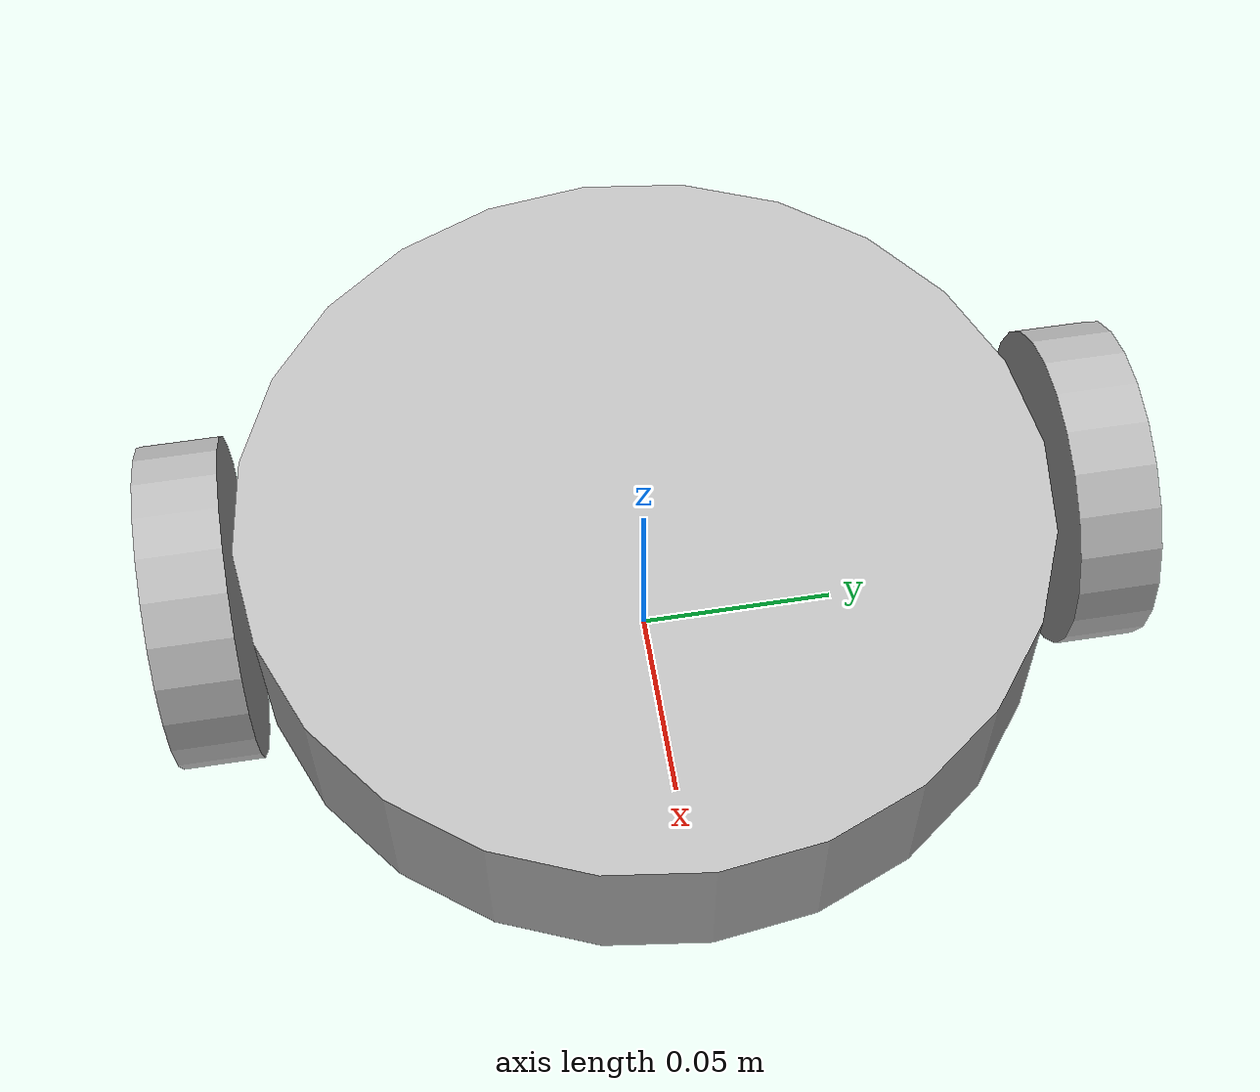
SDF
<?xml version='1.0'?>
<sdf version='1.4'>
    <model name="robot">
        <static>false</static>
        <link name="chassis">
            <pose>0 0 0.04 0 0 0</pose>
            <collision name="collision>">
                <geometry>
                    <cylinder>
                        <radius>0.1</radius>
                        <length>0.04</length>
                    </cylinder>
                </geometry>
            </collision>
            <visual name="visual">
                <geometry>
                    <cylinder>
                        <radius>0.1</radius>
                        <length>0.04</length>
                    </cylinder>
                </geometry>
            </visual>
            <collision name='caster_front_collision'>
                <pose>0.07 0 -0.02 0 0 0</pose>
                    <geometry>
                        <sphere>
                            <radius>.02</radius>
                        </sphere>
                    </geometry>
                <surface>
                    <friction>
                        <ode>
                            <mu>0</mu>
                            <mu2>0</mu2>
                            <slip1>1.0</slip1>
                            <slip2>1.0</slip2>
                        </ode>
                    </friction>
                </surface>
            </collision>
            <visual name='caster_front_visual'>
                <pose>0.07 0 -0.02 0 0 0</pose>
                <geometry>
                    <sphere>
                        <radius>.02</radius>
                    </sphere>
                </geometry>
            </visual>
            <collision name='caster_back_collision'>
                <pose>-0.07 0 -0.02 0 0 0</pose>
                    <geometry>
                        <sphere>
                            <radius>.02</radius>
                        </sphere>
                    </geometry>
                <surface>
                    <friction>
                        <ode>
                            <mu>0</mu>
                            <mu2>0</mu2>
                            <slip1>1.0</slip1>
                            <slip2>1.0</slip2>
                        </ode>
                    </friction>
                </surface>
            </collision>
            <visual name='caster_back_visual'>
                <pose>-0.07 0 -0.02 0 0 0</pose>
                <geometry>
                    <sphere>
                        <radius>.02</radius>
                    </sphere>
                </geometry>
            </visual>
        </link>
        <link name="left_wheel">
            <pose>0 0.11 0.04 0 1.5707 1.5707</pose>
            <collision name="collision">
                <geometry>
                    <cylinder>
                        <radius>.04</radius>
                        <length>.02</length>
                    </cylinder>
                </geometry>
            </collision>
            <visual name="visual">
                <geometry>
                    <cylinder>
                        <radius>.04</radius>
                        <length>.02</length>
                    </cylinder>
                </geometry>
            </visual>
        </link>
        <link name="right_wheel">
            <pose>0 -0.11 0.04 0 1.5707 1.5707</pose>
            <collision name="collision">
                <geometry>
                    <cylinder>
                        <radius>.04</radius>
                        <length>.02</length>
                    </cylinder>
                </geometry>
            </collision>
            <visual name="visual">
                <geometry>
                    <cylinder>
                        <radius>.04</radius>
                        <length>.02</length>
                    </cylinder>
                </geometry>
            </visual>
        </link>
        <joint type="revolute" name="left_wheel_hinge">
            <pose>0 0 0 0 0 0</pose>
            <child>left_wheel</child>
            <parent>chassis</parent>
            <axis>
                <xyz>0 1 0</xyz>
            </axis>
        </joint>

        <joint type="revolute" name="right_wheel_hinge">
            <pose>0 0 0 0 0 0</pose>
            <child>right_wheel</child>
            <parent>chassis</parent>
            <axis>
                <xyz>0 1 0</xyz>
            </axis>
        </joint>
    </model>
</sdf>
